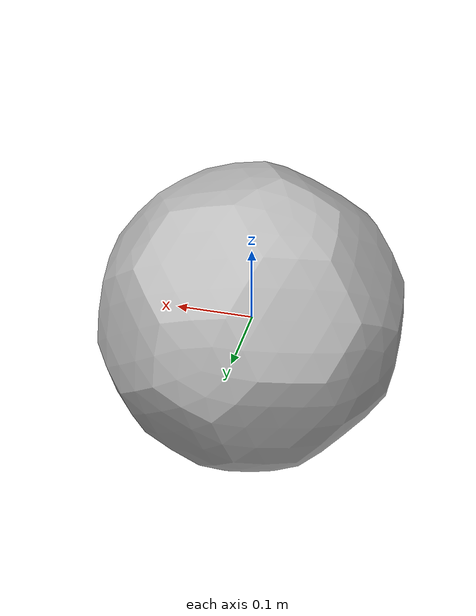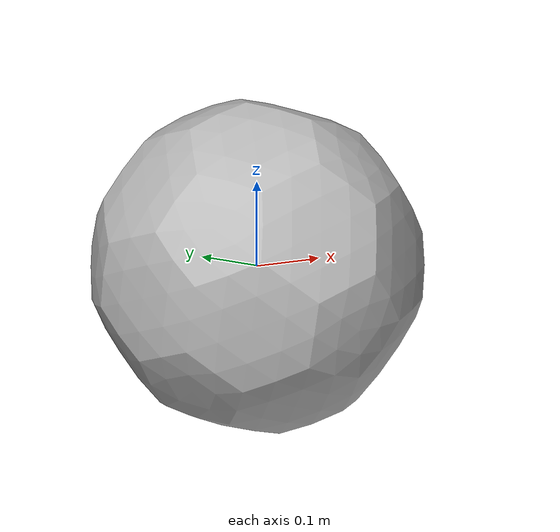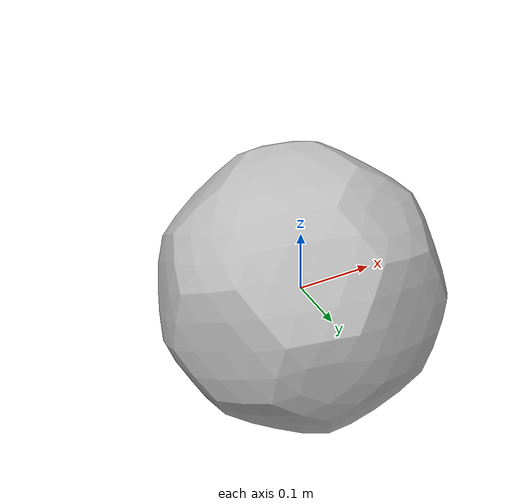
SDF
<?xml version="1.0" ?>
<sdf version="1.4">
  <model name="soccer_ball">
    <static>false</static>
    <link name="soccer_ball_link">
      <pose>0 0 0 0 0 0</pose>
      <inertial>
        <mass>0.026</mass>
        <!-- inertia based on solid sphere 2/5 mr^2 -->
        <inertia>
          <ixx>1.664e-5</ixx>
          <iyy>1.664e-5</iyy>
          <izz>1.664e-5</izz>
          <ixy>0</ixy>
          <ixz>0</ixz>
          <iyz>0</iyz>
        </inertia>
      </inertial>
      <collision name="collision">
        <geometry>
          <sphere>
            <radius>0.2</radius>
          </sphere>
        </geometry>
      </collision>
      <visual name="visual">
        <geometry>
          <mesh>
            <scale>0.2 0.2 0.2</scale>
            <uri>model://robocup_3Dsim_ball/meshes/ball.dae</uri>
          </mesh>
        </geometry>
      </visual>
    </link>
  </model>
</sdf>
